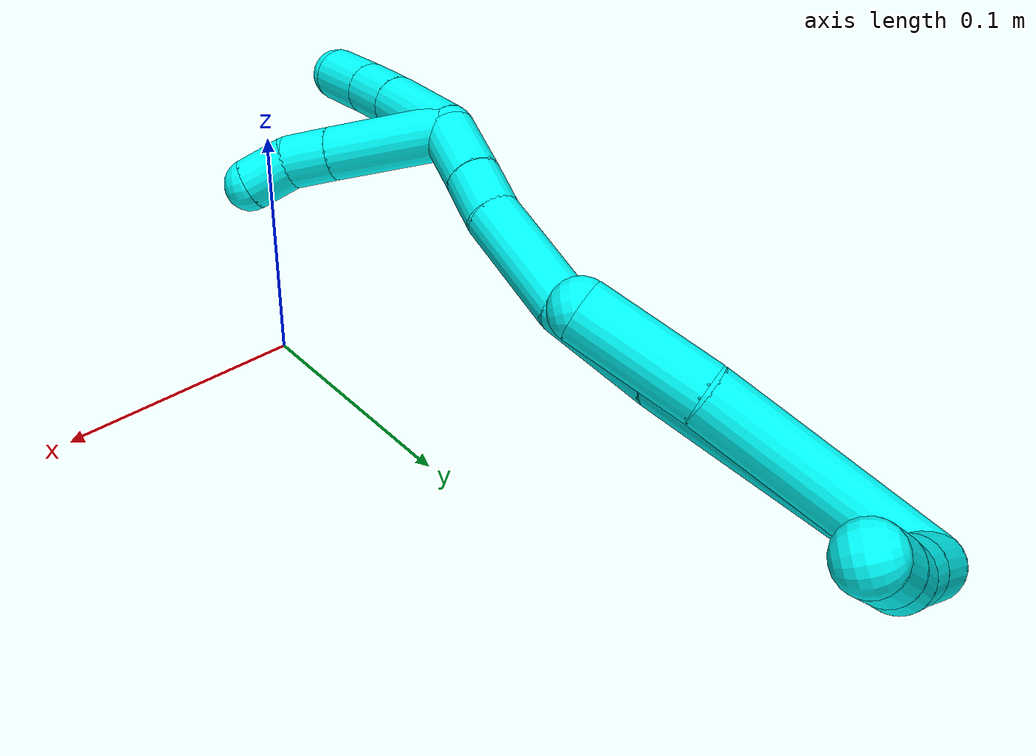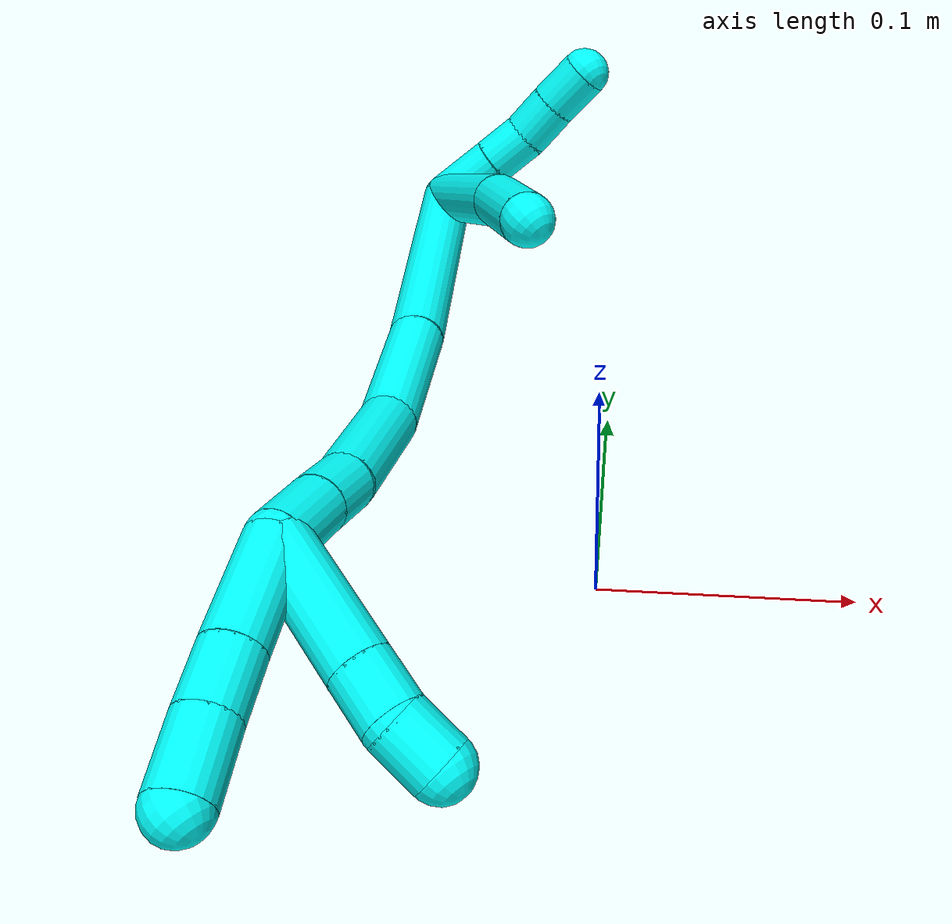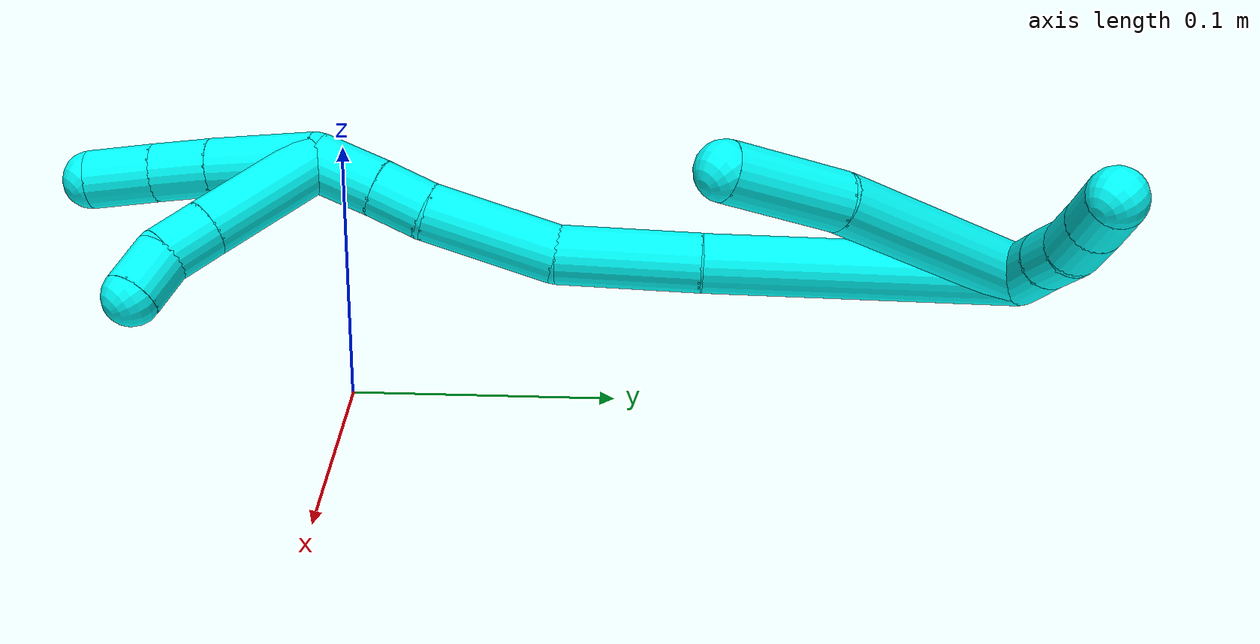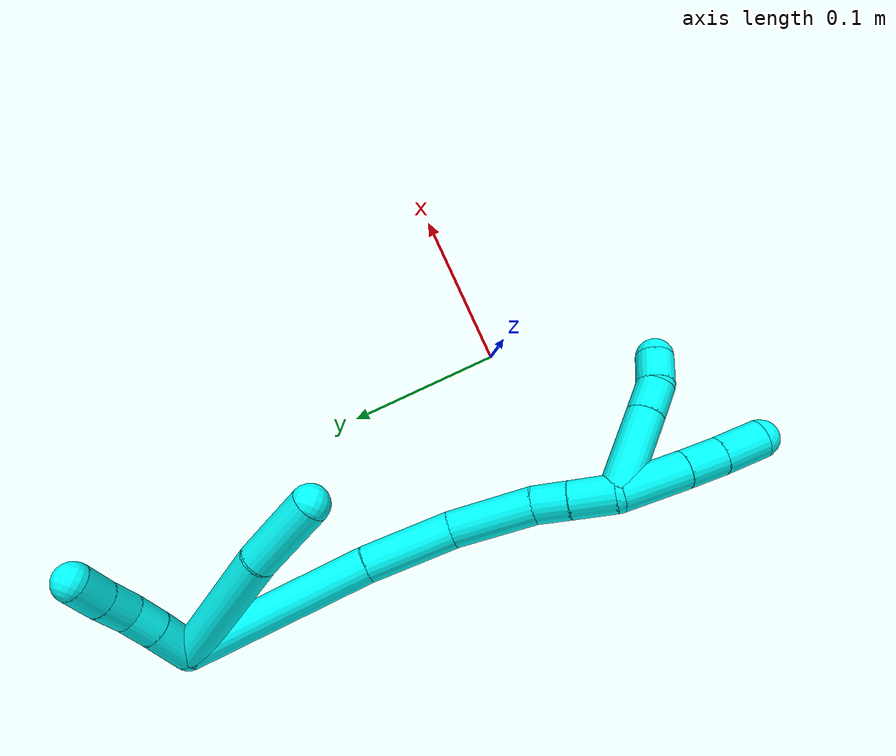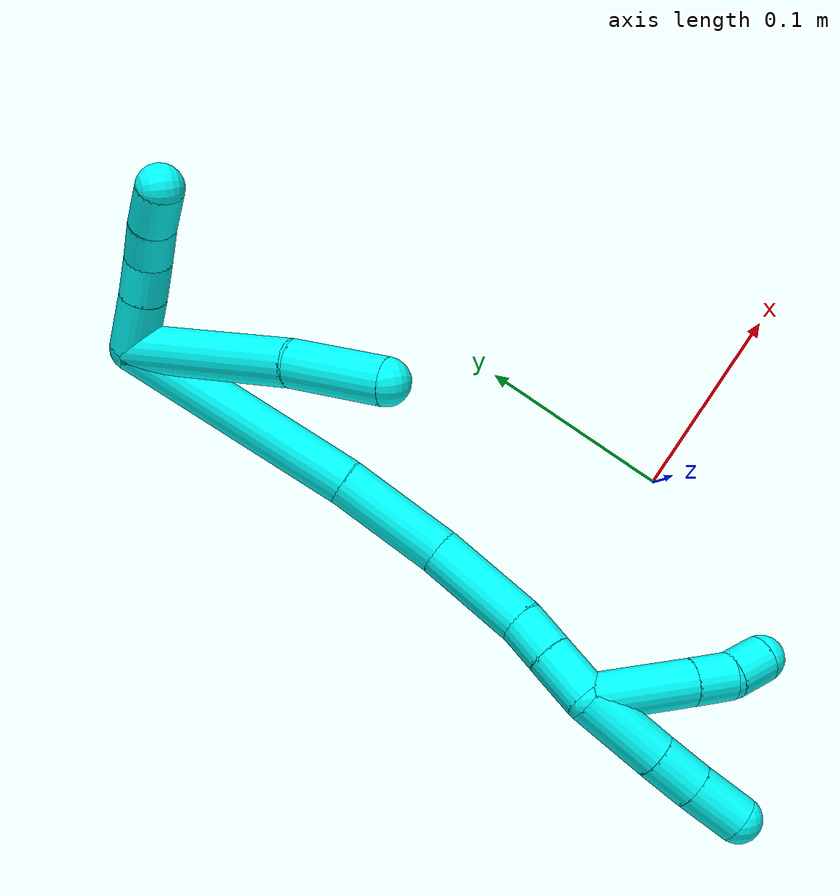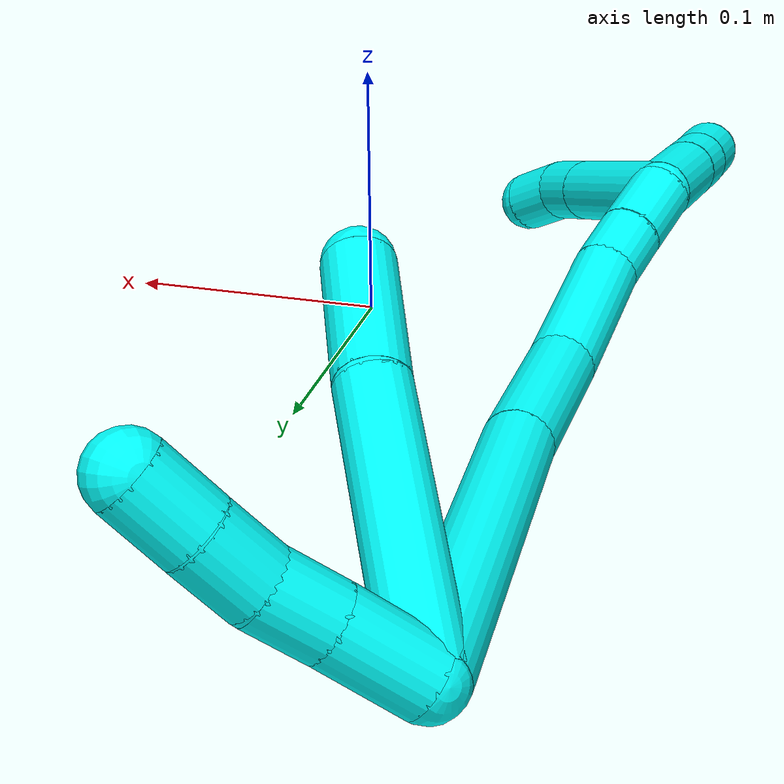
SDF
<sdf version="1.7">
 <world name="default">
  <model name="3">
   <static>0</static>
   <link name="3">
    <collision name="collision-cylinder-e_1_2_8">
     <pose>0.020183 -0.03292 -0.029947 2.30894 0.425765 0.909385</pose>
     <geometry><cylinder><radius>0.0125</radius><length>0.097733</length></cylinder></geometry>
     <surface>
      <friction><ode><mu>1.16</mu><mu2>1.16</mu2><slip1>0</slip1><slip2>0</slip2></ode></friction>
      <contact><ode><kp>1e+06</kp><kd>1</kd><max_vel>0</max_vel><min_depth>0.001</min_depth></ode></contact>
     </surface>
    </collision>
    <visual name="visual-cylinder-e_1_2_8">
     <pose>0.020183 -0.03292 -0.029947 2.30894 0.425765 0.909385</pose>
     <geometry><cylinder><radius>0.0125</radius><length>0.097733</length></cylinder></geometry>
     <material><ambient>0.003922 1 0.996078 1</ambient></material>
    </visual>
    <collision name="collision-cylinder-e_2_8_6">
     <pose>0.047689 -0.08365 -0.077563 2.35221 0.284032 0.66129</pose>
     <geometry><cylinder><radius>0.0125</radius><length>0.052267</length></cylinder></geometry>
     <surface>
      <friction><ode><mu>1.16</mu><mu2>1.16</mu2><slip1>0</slip1><slip2>0</slip2></ode></friction>
      <contact><ode><kp>1e+06</kp><kd>1</kd><max_vel>0</max_vel><min_depth>0.001</min_depth></ode></contact>
     </surface>
    </collision>
    <visual name="visual-cylinder-e_2_8_6">
     <pose>0.047689 -0.08365 -0.077563 2.35221 0.284032 0.66129</pose>
     <geometry><cylinder><radius>0.0125</radius><length>0.052267</length></cylinder></geometry>
     <material><ambient>0.003922 1 0.996078 1</ambient></material>
    </visual>
    <collision name="collision-cylinder-e_1_2_9">
     <pose>0.015538 0.00252 -0.002308 -2.31227 1.35429 -2.13971</pose>
     <geometry><cylinder><radius>0.0125</radius><length>0.031818</length></cylinder></geometry>
     <surface>
      <friction><ode><mu>1.16</mu><mu2>1.16</mu2><slip1>0</slip1><slip2>0</slip2></ode></friction>
      <contact><ode><kp>1e+06</kp><kd>1</kd><max_vel>0</max_vel><min_depth>0.001</min_depth></ode></contact>
     </surface>
    </collision>
    <visual name="visual-cylinder-e_1_2_9">
     <pose>0.015538 0.00252 -0.002308 -2.31227 1.35429 -2.13971</pose>
     <geometry><cylinder><radius>0.0125</radius><length>0.031818</length></cylinder></geometry>
     <material><ambient>0.003922 1 0.996078 1</ambient></material>
    </visual>
    <collision name="collision-cylinder-e_2_9_10">
     <pose>0.041892 0.007121 -0.00594 -2.13759 1.34663 -1.93615</pose>
     <geometry><cylinder><radius>0.0125</radius><length>0.02219</length></cylinder></geometry>
     <surface>
      <friction><ode><mu>1.16</mu><mu2>1.16</mu2><slip1>0</slip1><slip2>0</slip2></ode></friction>
      <contact><ode><kp>1e+06</kp><kd>1</kd><max_vel>0</max_vel><min_depth>0.001</min_depth></ode></contact>
     </surface>
    </collision>
    <visual name="visual-cylinder-e_2_9_10">
     <pose>0.041892 0.007121 -0.00594 -2.13759 1.34663 -1.93615</pose>
     <geometry><cylinder><radius>0.0125</radius><length>0.02219</length></cylinder></geometry>
     <material><ambient>0.003922 1 0.996078 1</ambient></material>
    </visual>
    <collision name="collision-cylinder-e_3_10_11">
     <pose>0.063873 0.009335 -0.00764 -2.80041 1.53513 -2.78827</pose>
     <geometry><cylinder><radius>0.0125</radius><length>0.022341</length></cylinder></geometry>
     <surface>
      <friction><ode><mu>1.16</mu><mu2>1.16</mu2><slip1>0</slip1><slip2>0</slip2></ode></friction>
      <contact><ode><kp>1e+06</kp><kd>1</kd><max_vel>0</max_vel><min_depth>0.001</min_depth></ode></contact>
     </surface>
    </collision>
    <visual name="visual-cylinder-e_3_10_11">
     <pose>0.063873 0.009335 -0.00764 -2.80041 1.53513 -2.78827</pose>
     <geometry><cylinder><radius>0.0125</radius><length>0.022341</length></cylinder></geometry>
     <material><ambient>0.003922 1 0.996078 1</ambient></material>
    </visual>
    <collision name="collision-cylinder-e_4_11_5">
     <pose>0.086814 0.009327 -0.009079 3.00879 1.47995 2.99618</pose>
     <geometry><cylinder><radius>0.0125</radius><length>0.023651</length></cylinder></geometry>
     <surface>
      <friction><ode><mu>1.16</mu><mu2>1.16</mu2><slip1>0</slip1><slip2>0</slip2></ode></friction>
      <contact><ode><kp>1e+06</kp><kd>1</kd><max_vel>0</max_vel><min_depth>0.001</min_depth></ode></contact>
     </surface>
    </collision>
    <visual name="visual-cylinder-e_4_11_5">
     <pose>0.086814 0.009327 -0.009079 3.00879 1.47995 2.99618</pose>
     <geometry><cylinder><radius>0.0125</radius><length>0.023651</length></cylinder></geometry>
     <material><ambient>0.003922 1 0.996078 1</ambient></material>
    </visual>
    <collision name="collision-cylinder-e_1_2_12">
     <pose>-0.01252 -0.046588 -0.04372 2.32444 -0.193513 -0.441084</pose>
     <geometry><cylinder><radius>0.0125</radius><length>0.13021</length></cylinder></geometry>
     <surface>
      <friction><ode><mu>1.16</mu><mu2>1.16</mu2><slip1>0</slip1><slip2>0</slip2></ode></friction>
      <contact><ode><kp>1e+06</kp><kd>1</kd><max_vel>0</max_vel><min_depth>0.001</min_depth></ode></contact>
     </surface>
    </collision>
    <visual name="visual-cylinder-e_1_2_12">
     <pose>-0.01252 -0.046588 -0.04372 2.32444 -0.193513 -0.441084</pose>
     <geometry><cylinder><radius>0.0125</radius><length>0.13021</length></cylinder></geometry>
     <material><ambient>0.003922 1 0.996078 1</ambient></material>
    </visual>
    <collision name="collision-cylinder-e_2_12_13">
     <pose>-0.032457 -0.115525 -0.106442 2.27546 -0.247632 -0.525895</pose>
     <geometry><cylinder><radius>0.0125</radius><length>0.060516</length></cylinder></geometry>
     <surface>
      <friction><ode><mu>1.16</mu><mu2>1.16</mu2><slip1>0</slip1><slip2>0</slip2></ode></friction>
      <contact><ode><kp>1e+06</kp><kd>1</kd><max_vel>0</max_vel><min_depth>0.001</min_depth></ode></contact>
     </surface>
    </collision>
    <visual name="visual-cylinder-e_2_12_13">
     <pose>-0.032457 -0.115525 -0.106442 2.27546 -0.247632 -0.525895</pose>
     <geometry><cylinder><radius>0.0125</radius><length>0.060516</length></cylinder></geometry>
     <material><ambient>0.003922 1 0.996078 1</ambient></material>
    </visual>
    <collision name="collision-cylinder-e_3_13_14">
     <pose>-0.042428 -0.162894 -0.13878 2.06048 -0.089846 -0.149517</pose>
     <geometry><cylinder><radius>0.0125</radius><length>0.056935</length></cylinder></geometry>
     <surface>
      <friction><ode><mu>1.16</mu><mu2>1.16</mu2><slip1>0</slip1><slip2>0</slip2></ode></friction>
      <contact><ode><kp>1e+06</kp><kd>1</kd><max_vel>0</max_vel><min_depth>0.001</min_depth></ode></contact>
     </surface>
    </collision>
    <visual name="visual-cylinder-e_3_13_14">
     <pose>-0.042428 -0.162894 -0.13878 2.06048 -0.089846 -0.149517</pose>
     <geometry><cylinder><radius>0.0125</radius><length>0.056935</length></cylinder></geometry>
     <material><ambient>0.003922 1 0.996078 1</ambient></material>
    </visual>
    <collision name="collision-cylinder-e_4_14_15">
     <pose>-0.046373 -0.198688 -0.155847 1.90422 -0.121387 -0.170302</pose>
     <geometry><cylinder><radius>0.0125</radius><length>0.022972</length></cylinder></geometry>
     <surface>
      <friction><ode><mu>1.16</mu><mu2>1.16</mu2><slip1>0</slip1><slip2>0</slip2></ode></friction>
      <contact><ode><kp>1e+06</kp><kd>1</kd><max_vel>0</max_vel><min_depth>0.001</min_depth></ode></contact>
     </surface>
    </collision>
    <visual name="visual-cylinder-e_4_14_15">
     <pose>-0.046373 -0.198688 -0.155847 1.90422 -0.121387 -0.170302</pose>
     <geometry><cylinder><radius>0.0125</radius><length>0.022972</length></cylinder></geometry>
     <material><ambient>0.003922 1 0.996078 1</ambient></material>
    </visual>
    <collision name="collision-cylinder-e_5_15_1">
     <pose>-0.049976 -0.223062 -0.164654 1.92797 -0.15122 -0.217395</pose>
     <geometry><cylinder><radius>0.0125</radius><length>0.029367</length></cylinder></geometry>
     <surface>
      <friction><ode><mu>1.16</mu><mu2>1.16</mu2><slip1>0</slip1><slip2>0</slip2></ode></friction>
      <contact><ode><kp>1e+06</kp><kd>1</kd><max_vel>0</max_vel><min_depth>0.001</min_depth></ode></contact>
     </surface>
    </collision>
    <visual name="visual-cylinder-e_5_15_1">
     <pose>-0.049976 -0.223062 -0.164654 1.92797 -0.15122 -0.217395</pose>
     <geometry><cylinder><radius>0.0125</radius><length>0.029367</length></cylinder></geometry>
     <material><ambient>0.003922 1 0.996078 1</ambient></material>
    </visual>
    <collision name="collision-cylinder-e_1_1_16">
     <pose>-0.051922 -0.238906 -0.197786 3.06177 0.009444 0.235415</pose>
     <geometry><cylinder><radius>0.0125</radius><length>0.056295</length></cylinder></geometry>
     <surface>
      <friction><ode><mu>1.16</mu><mu2>1.16</mu2><slip1>0</slip1><slip2>0</slip2></ode></friction>
      <contact><ode><kp>1e+06</kp><kd>1</kd><max_vel>0</max_vel><min_depth>0.001</min_depth></ode></contact>
     </surface>
    </collision>
    <visual name="visual-cylinder-e_1_1_16">
     <pose>-0.051922 -0.238906 -0.197786 3.06177 0.009444 0.235415</pose>
     <geometry><cylinder><radius>0.0125</radius><length>0.056295</length></cylinder></geometry>
     <material><ambient>0.003922 1 0.996078 1</ambient></material>
    </visual>
    <collision name="collision-cylinder-e_2_16_17">
     <pose>-0.051567 -0.241913 -0.236801 3.07205 0.008069 0.230956</pose>
     <geometry><cylinder><radius>0.0125</radius><length>0.021972</length></cylinder></geometry>
     <surface>
      <friction><ode><mu>1.16</mu><mu2>1.16</mu2><slip1>0</slip1><slip2>0</slip2></ode></friction>
      <contact><ode><kp>1e+06</kp><kd>1</kd><max_vel>0</max_vel><min_depth>0.001</min_depth></ode></contact>
     </surface>
    </collision>
    <visual name="visual-cylinder-e_2_16_17">
     <pose>-0.051567 -0.241913 -0.236801 3.07205 0.008069 0.230956</pose>
     <geometry><cylinder><radius>0.0125</radius><length>0.021972</length></cylinder></geometry>
     <material><ambient>0.003922 1 0.996078 1</ambient></material>
    </visual>
    <collision name="collision-cylinder-e_3_17_4">
     <pose>-0.051298 -0.239771 -0.25823 -2.87085 0.016632 -0.121966</pose>
     <geometry><cylinder><radius>0.0125</radius><length>0.021733</length></cylinder></geometry>
     <surface>
      <friction><ode><mu>1.16</mu><mu2>1.16</mu2><slip1>0</slip1><slip2>0</slip2></ode></friction>
      <contact><ode><kp>1e+06</kp><kd>1</kd><max_vel>0</max_vel><min_depth>0.001</min_depth></ode></contact>
     </surface>
    </collision>
    <visual name="visual-cylinder-e_3_17_4">
     <pose>-0.051298 -0.239771 -0.25823 -2.87085 0.016632 -0.121966</pose>
     <geometry><cylinder><radius>0.0125</radius><length>0.021733</length></cylinder></geometry>
     <material><ambient>0.003922 1 0.996078 1</ambient></material>
    </visual>
    <collision name="collision-cylinder-e_1_1_18">
     <pose>-0.061038 -0.251925 -0.184002 2.32266 -0.400611 -0.875134</pose>
     <geometry><cylinder><radius>0.0125</radius><length>0.045387</length></cylinder></geometry>
     <surface>
      <friction><ode><mu>1.16</mu><mu2>1.16</mu2><slip1>0</slip1><slip2>0</slip2></ode></friction>
      <contact><ode><kp>1e+06</kp><kd>1</kd><max_vel>0</max_vel><min_depth>0.001</min_depth></ode></contact>
     </surface>
    </collision>
    <visual name="visual-cylinder-e_1_1_18">
     <pose>-0.061038 -0.251925 -0.184002 2.32266 -0.400611 -0.875134</pose>
     <geometry><cylinder><radius>0.0125</radius><length>0.045387</length></cylinder></geometry>
     <material><ambient>0.003922 1 0.996078 1</ambient></material>
    </visual>
    <collision name="collision-cylinder-e_2_18_19">
     <pose>-0.074879 -0.275413 -0.206474 2.3547 -0.40588 -0.920454</pose>
     <geometry><cylinder><radius>0.0125</radius><length>0.025281</length></cylinder></geometry>
     <surface>
      <friction><ode><mu>1.16</mu><mu2>1.16</mu2><slip1>0</slip1><slip2>0</slip2></ode></friction>
      <contact><ode><kp>1e+06</kp><kd>1</kd><max_vel>0</max_vel><min_depth>0.001</min_depth></ode></contact>
     </surface>
    </collision>
    <visual name="visual-cylinder-e_2_18_19">
     <pose>-0.074879 -0.275413 -0.206474 2.3547 -0.40588 -0.920454</pose>
     <geometry><cylinder><radius>0.0125</radius><length>0.025281</length></cylinder></geometry>
     <material><ambient>0.003922 1 0.996078 1</ambient></material>
    </visual>
    <collision name="collision-cylinder-e_3_19_3">
     <pose>-0.08532 -0.292972 -0.224586 2.38618 -0.380754 -0.904311</pose>
     <geometry><cylinder><radius>0.0125</radius><length>0.029331</length></cylinder></geometry>
     <surface>
      <friction><ode><mu>1.16</mu><mu2>1.16</mu2><slip1>0</slip1><slip2>0</slip2></ode></friction>
      <contact><ode><kp>1e+06</kp><kd>1</kd><max_vel>0</max_vel><min_depth>0.001</min_depth></ode></contact>
     </surface>
    </collision>
    <visual name="visual-cylinder-e_3_19_3">
     <pose>-0.08532 -0.292972 -0.224586 2.38618 -0.380754 -0.904311</pose>
     <geometry><cylinder><radius>0.0125</radius><length>0.029331</length></cylinder></geometry>
     <material><ambient>0.003922 1 0.996078 1</ambient></material>
    </visual>
    <collision name="collision-sphere-3">
     <pose>-0.09077 -0.302306 -0.234498 0 -0 0</pose>
     <geometry><sphere><radius>0.0125</radius></sphere></geometry>
     <surface>
      <friction><ode><mu>1.16</mu><mu2>1.16</mu2><slip1>0</slip1><slip2>0</slip2></ode></friction>
      <contact><ode><kp>1e+06</kp><kd>1</kd><max_vel>0</max_vel><min_depth>0.001</min_depth></ode></contact>
     </surface>
    </collision>
    <visual name="visual-sphere-3">
     <pose>-0.09077 -0.302306 -0.234498 0 -0 0</pose>
     <geometry><sphere><radius>0.0125</radius></sphere></geometry>
     <material><ambient>0.003922 1 0.996078 1</ambient></material>
    </visual>
    <collision name="collision-sphere-19">
     <pose>-0.079869 -0.283637 -0.214674 0 -0 0</pose>
     <geometry><sphere><radius>0.0125</radius></sphere></geometry>
     <surface>
      <friction><ode><mu>1.16</mu><mu2>1.16</mu2><slip1>0</slip1><slip2>0</slip2></ode></friction>
      <contact><ode><kp>1e+06</kp><kd>1</kd><max_vel>0</max_vel><min_depth>0.001</min_depth></ode></contact>
     </surface>
    </collision>
    <visual name="visual-sphere-19">
     <pose>-0.079869 -0.283637 -0.214674 0 -0 0</pose>
     <geometry><sphere><radius>0.0125</radius></sphere></geometry>
     <material><ambient>0.003922 1 0.996078 1</ambient></material>
    </visual>
    <collision name="collision-sphere-11">
     <pose>0.075037 0.009469 -0.008015 0 -0 0</pose>
     <geometry><sphere><radius>0.0125</radius></sphere></geometry>
     <surface>
      <friction><ode><mu>1.16</mu><mu2>1.16</mu2><slip1>0</slip1><slip2>0</slip2></ode></friction>
      <contact><ode><kp>1e+06</kp><kd>1</kd><max_vel>0</max_vel><min_depth>0.001</min_depth></ode></contact>
     </surface>
    </collision>
    <visual name="visual-sphere-11">
     <pose>0.075037 0.009469 -0.008015 0 -0 0</pose>
     <geometry><sphere><radius>0.0125</radius></sphere></geometry>
     <material><ambient>0.003922 1 0.996078 1</ambient></material>
    </visual>
    <collision name="collision-sphere-10">
     <pose>0.05271 0.009202 -0.007265 0 -0 0</pose>
     <geometry><sphere><radius>0.0125</radius></sphere></geometry>
     <surface>
      <friction><ode><mu>1.16</mu><mu2>1.16</mu2><slip1>0</slip1><slip2>0</slip2></ode></friction>
      <contact><ode><kp>1e+06</kp><kd>1</kd><max_vel>0</max_vel><min_depth>0.001</min_depth></ode></contact>
     </surface>
    </collision>
    <visual name="visual-sphere-10">
     <pose>0.05271 0.009202 -0.007265 0 -0 0</pose>
     <geometry><sphere><radius>0.0125</radius></sphere></geometry>
     <material><ambient>0.003922 1 0.996078 1</ambient></material>
    </visual>
    <collision name="collision-sphere-6">
     <pose>0.055012 -0.101459 -0.095231 0 -0 0</pose>
     <geometry><sphere><radius>0.0125</radius></sphere></geometry>
     <surface>
      <friction><ode><mu>1.16</mu><mu2>1.16</mu2><slip1>0</slip1><slip2>0</slip2></ode></friction>
      <contact><ode><kp>1e+06</kp><kd>1</kd><max_vel>0</max_vel><min_depth>0.001</min_depth></ode></contact>
     </surface>
    </collision>
    <visual name="visual-sphere-6">
     <pose>0.055012 -0.101459 -0.095231 0 -0 0</pose>
     <geometry><sphere><radius>0.0125</radius></sphere></geometry>
     <material><ambient>0.003922 1 0.996078 1</ambient></material>
    </visual>
    <collision name="collision-sphere-9">
     <pose>0.031075 0.005041 -0.004616 0 -0 0</pose>
     <geometry><sphere><radius>0.0125</radius></sphere></geometry>
     <surface>
      <friction><ode><mu>1.16</mu><mu2>1.16</mu2><slip1>0</slip1><slip2>0</slip2></ode></friction>
      <contact><ode><kp>1e+06</kp><kd>1</kd><max_vel>0</max_vel><min_depth>0.001</min_depth></ode></contact>
     </surface>
    </collision>
    <visual name="visual-sphere-9">
     <pose>0.031075 0.005041 -0.004616 0 -0 0</pose>
     <geometry><sphere><radius>0.0125</radius></sphere></geometry>
     <material><ambient>0.003922 1 0.996078 1</ambient></material>
    </visual>
    <collision name="collision-sphere-2">
     <geometry><sphere><radius>0.0125</radius></sphere></geometry>
     <surface>
      <friction><ode><mu>1.16</mu><mu2>1.16</mu2><slip1>0</slip1><slip2>0</slip2></ode></friction>
      <contact><ode><kp>1e+06</kp><kd>1</kd><max_vel>0</max_vel><min_depth>0.001</min_depth></ode></contact>
     </surface>
    </collision>
    <visual name="visual-sphere-2">
     <geometry><sphere><radius>0.0125</radius></sphere></geometry>
     <material><ambient>0.003922 1 0.996078 1</ambient></material>
    </visual>
    <collision name="collision-sphere-8">
     <pose>0.040365 -0.06584 -0.059895 0 -0 0</pose>
     <geometry><sphere><radius>0.0125</radius></sphere></geometry>
     <surface>
      <friction><ode><mu>1.16</mu><mu2>1.16</mu2><slip1>0</slip1><slip2>0</slip2></ode></friction>
      <contact><ode><kp>1e+06</kp><kd>1</kd><max_vel>0</max_vel><min_depth>0.001</min_depth></ode></contact>
     </surface>
    </collision>
    <visual name="visual-sphere-8">
     <pose>0.040365 -0.06584 -0.059895 0 -0 0</pose>
     <geometry><sphere><radius>0.0125</radius></sphere></geometry>
     <material><ambient>0.003922 1 0.996078 1</ambient></material>
    </visual>
    <collision name="collision-sphere-5">
     <pose>0.09859 0.009184 -0.010142 0 -0 0</pose>
     <geometry><sphere><radius>0.0125</radius></sphere></geometry>
     <surface>
      <friction><ode><mu>1.16</mu><mu2>1.16</mu2><slip1>0</slip1><slip2>0</slip2></ode></friction>
      <contact><ode><kp>1e+06</kp><kd>1</kd><max_vel>0</max_vel><min_depth>0.001</min_depth></ode></contact>
     </surface>
    </collision>
    <visual name="visual-sphere-5">
     <pose>0.09859 0.009184 -0.010142 0 -0 0</pose>
     <geometry><sphere><radius>0.0125</radius></sphere></geometry>
     <material><ambient>0.003922 1 0.996078 1</ambient></material>
    </visual>
    <collision name="collision-sphere-12">
     <pose>-0.02504 -0.093177 -0.08744 0 -0 0</pose>
     <geometry><sphere><radius>0.0125</radius></sphere></geometry>
     <surface>
      <friction><ode><mu>1.16</mu><mu2>1.16</mu2><slip1>0</slip1><slip2>0</slip2></ode></friction>
      <contact><ode><kp>1e+06</kp><kd>1</kd><max_vel>0</max_vel><min_depth>0.001</min_depth></ode></contact>
     </surface>
    </collision>
    <visual name="visual-sphere-12">
     <pose>-0.02504 -0.093177 -0.08744 0 -0 0</pose>
     <geometry><sphere><radius>0.0125</radius></sphere></geometry>
     <material><ambient>0.003922 1 0.996078 1</ambient></material>
    </visual>
    <collision name="collision-sphere-13">
     <pose>-0.039873 -0.137873 -0.125445 0 -0 0</pose>
     <geometry><sphere><radius>0.0125</radius></sphere></geometry>
     <surface>
      <friction><ode><mu>1.16</mu><mu2>1.16</mu2><slip1>0</slip1><slip2>0</slip2></ode></friction>
      <contact><ode><kp>1e+06</kp><kd>1</kd><max_vel>0</max_vel><min_depth>0.001</min_depth></ode></contact>
     </surface>
    </collision>
    <visual name="visual-sphere-13">
     <pose>-0.039873 -0.137873 -0.125445 0 -0 0</pose>
     <geometry><sphere><radius>0.0125</radius></sphere></geometry>
     <material><ambient>0.003922 1 0.996078 1</ambient></material>
    </visual>
    <collision name="collision-sphere-14">
     <pose>-0.044982 -0.187915 -0.152116 0 -0 0</pose>
     <geometry><sphere><radius>0.0125</radius></sphere></geometry>
     <surface>
      <friction><ode><mu>1.16</mu><mu2>1.16</mu2><slip1>0</slip1><slip2>0</slip2></ode></friction>
      <contact><ode><kp>1e+06</kp><kd>1</kd><max_vel>0</max_vel><min_depth>0.001</min_depth></ode></contact>
     </surface>
    </collision>
    <visual name="visual-sphere-14">
     <pose>-0.044982 -0.187915 -0.152116 0 -0 0</pose>
     <geometry><sphere><radius>0.0125</radius></sphere></geometry>
     <material><ambient>0.003922 1 0.996078 1</ambient></material>
    </visual>
    <collision name="collision-sphere-15">
     <pose>-0.047764 -0.209462 -0.159579 0 -0 0</pose>
     <geometry><sphere><radius>0.0125</radius></sphere></geometry>
     <surface>
      <friction><ode><mu>1.16</mu><mu2>1.16</mu2><slip1>0</slip1><slip2>0</slip2></ode></friction>
      <contact><ode><kp>1e+06</kp><kd>1</kd><max_vel>0</max_vel><min_depth>0.001</min_depth></ode></contact>
     </surface>
    </collision>
    <visual name="visual-sphere-15">
     <pose>-0.047764 -0.209462 -0.159579 0 -0 0</pose>
     <geometry><sphere><radius>0.0125</radius></sphere></geometry>
     <material><ambient>0.003922 1 0.996078 1</ambient></material>
    </visual>
    <collision name="collision-sphere-1">
     <pose>-0.052188 -0.236662 -0.169729 0 -0 0</pose>
     <geometry><sphere><radius>0.0125</radius></sphere></geometry>
     <surface>
      <friction><ode><mu>1.16</mu><mu2>1.16</mu2><slip1>0</slip1><slip2>0</slip2></ode></friction>
      <contact><ode><kp>1e+06</kp><kd>1</kd><max_vel>0</max_vel><min_depth>0.001</min_depth></ode></contact>
     </surface>
    </collision>
    <visual name="visual-sphere-1">
     <pose>-0.052188 -0.236662 -0.169729 0 -0 0</pose>
     <geometry><sphere><radius>0.0125</radius></sphere></geometry>
     <material><ambient>0.003922 1 0.996078 1</ambient></material>
    </visual>
    <collision name="collision-sphere-18">
     <pose>-0.069888 -0.267188 -0.198275 0 -0 0</pose>
     <geometry><sphere><radius>0.0125</radius></sphere></geometry>
     <surface>
      <friction><ode><mu>1.16</mu><mu2>1.16</mu2><slip1>0</slip1><slip2>0</slip2></ode></friction>
      <contact><ode><kp>1e+06</kp><kd>1</kd><max_vel>0</max_vel><min_depth>0.001</min_depth></ode></contact>
     </surface>
    </collision>
    <visual name="visual-sphere-18">
     <pose>-0.069888 -0.267188 -0.198275 0 -0 0</pose>
     <geometry><sphere><radius>0.0125</radius></sphere></geometry>
     <material><ambient>0.003922 1 0.996078 1</ambient></material>
    </visual>
    <collision name="collision-sphere-16">
     <pose>-0.051656 -0.24115 -0.225842 0 -0 0</pose>
     <geometry><sphere><radius>0.0125</radius></sphere></geometry>
     <surface>
      <friction><ode><mu>1.16</mu><mu2>1.16</mu2><slip1>0</slip1><slip2>0</slip2></ode></friction>
      <contact><ode><kp>1e+06</kp><kd>1</kd><max_vel>0</max_vel><min_depth>0.001</min_depth></ode></contact>
     </surface>
    </collision>
    <visual name="visual-sphere-16">
     <pose>-0.051656 -0.24115 -0.225842 0 -0 0</pose>
     <geometry><sphere><radius>0.0125</radius></sphere></geometry>
     <material><ambient>0.003922 1 0.996078 1</ambient></material>
    </visual>
    <collision name="collision-sphere-17">
     <pose>-0.051479 -0.242677 -0.24776 0 -0 0</pose>
     <geometry><sphere><radius>0.0125</radius></sphere></geometry>
     <surface>
      <friction><ode><mu>1.16</mu><mu2>1.16</mu2><slip1>0</slip1><slip2>0</slip2></ode></friction>
      <contact><ode><kp>1e+06</kp><kd>1</kd><max_vel>0</max_vel><min_depth>0.001</min_depth></ode></contact>
     </surface>
    </collision>
    <visual name="visual-sphere-17">
     <pose>-0.051479 -0.242677 -0.24776 0 -0 0</pose>
     <geometry><sphere><radius>0.0125</radius></sphere></geometry>
     <material><ambient>0.003922 1 0.996078 1</ambient></material>
    </visual>
    <collision name="collision-sphere-4">
     <pose>-0.051117 -0.236865 -0.268699 0 -0 0</pose>
     <geometry><sphere><radius>0.0125</radius></sphere></geometry>
     <surface>
      <friction><ode><mu>1.16</mu><mu2>1.16</mu2><slip1>0</slip1><slip2>0</slip2></ode></friction>
      <contact><ode><kp>1e+06</kp><kd>1</kd><max_vel>0</max_vel><min_depth>0.001</min_depth></ode></contact>
     </surface>
    </collision>
    <visual name="visual-sphere-4">
     <pose>-0.051117 -0.236865 -0.268699 0 -0 0</pose>
     <geometry><sphere><radius>0.0125</radius></sphere></geometry>
     <material><ambient>0.003922 1 0.996078 1</ambient></material>
    </visual>
    <inertial>
     <pose>-0.015347 -0.121779 -0.104175 0 -0 0</pose>
     <mass>0.75</mass>
     <inertia>
      <ixx>0.000263</ixx>
      <ixy>0</ixy>
      <ixz>0</ixz>
      <iyy>-0.000224</iyy>
      <iyz>0</iyz>
      <izz>0.000214</izz>
     </inertia>
    </inertial>
   </link>
   <pose>-0.093774 0.262911 0.013529 -1.02126 -0.839855 0.355076</pose>
  </model>
 </world>
</sdf>
